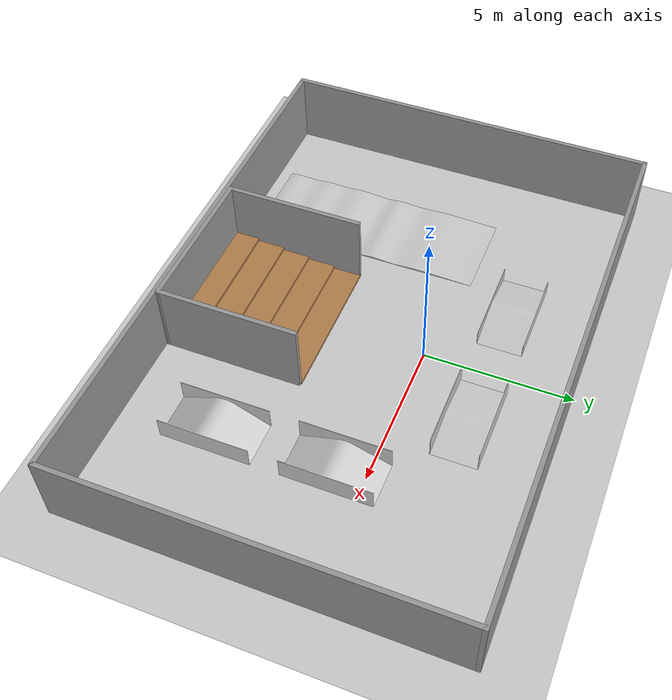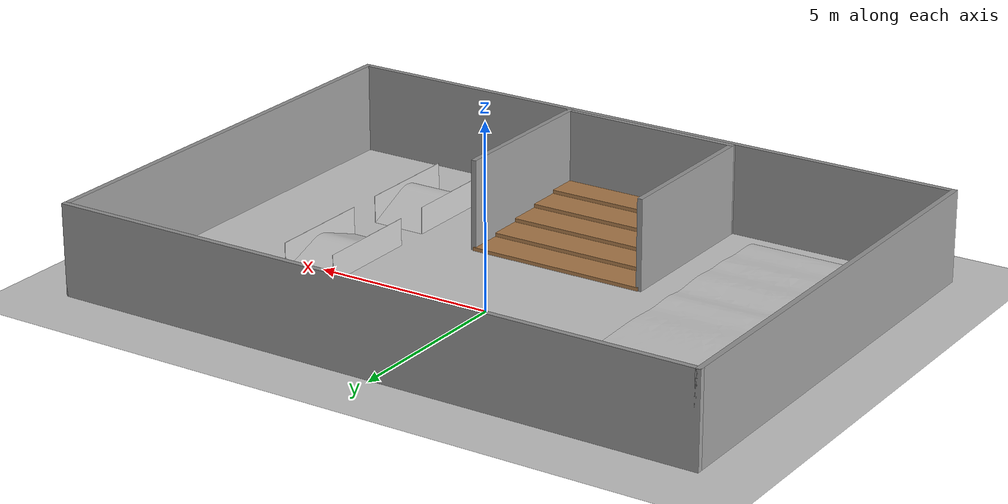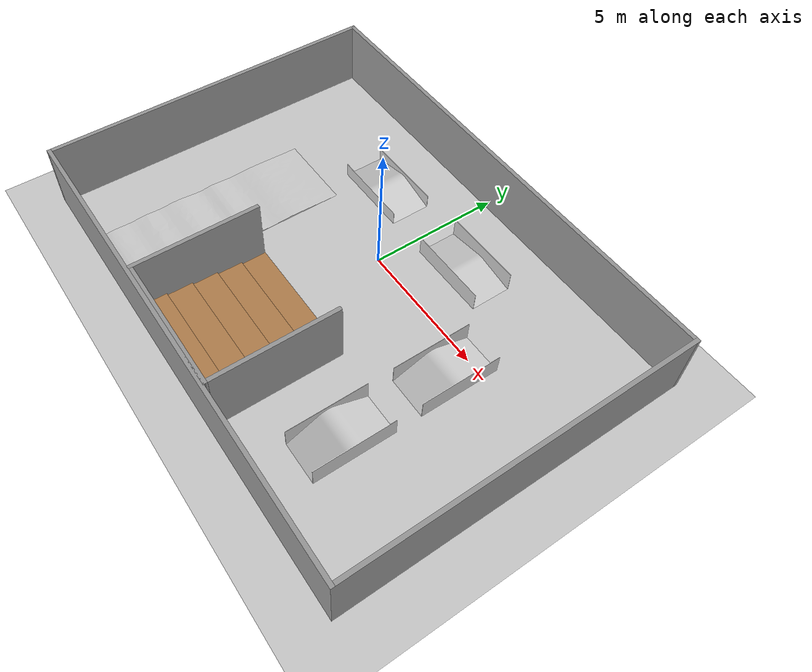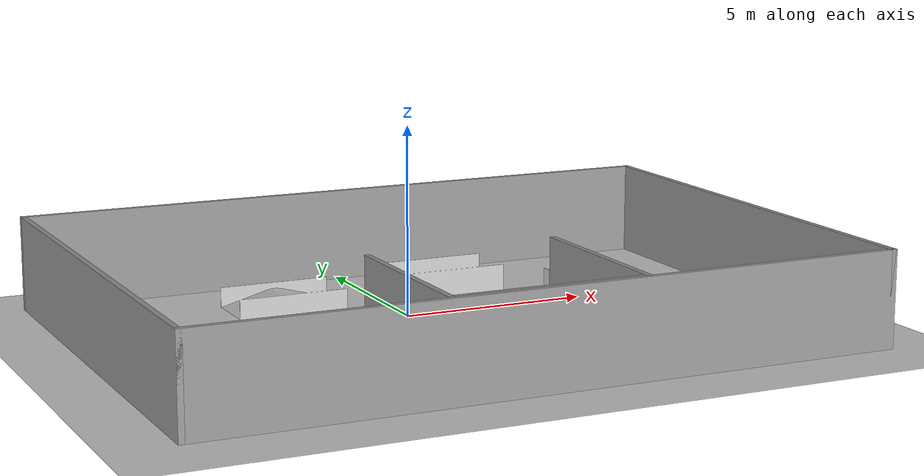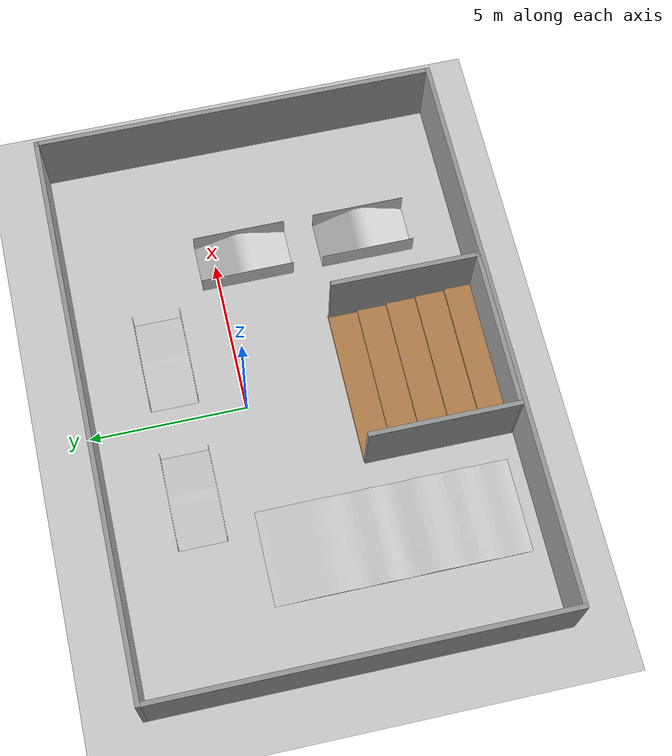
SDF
<?xml version="1.0" ?>
<sdf version="1.6">
  <world name="default">

    <!-- A simple ground plane -->
    <include>
      <uri>model://ground_plane</uri>
    </include>

    <!-- A light source -->
    <include>
      <uri>model://sun</uri>
    </include>
    <!-- Stairs -->
    <include>
      <uri>model://stairs</uri>
      <pose>0 -5.5 0 0 0 0</pose>

    </include>
    <include>
      <uri>model://wall</uri>
      <pose>0.24 -1.58 0 0 0 0</pose>

    </include>

    <model name="ramp_10">
      <pose>2 2.95 0 0 0 -1.57</pose>
      <link name="link">
        <!-- Visual element for rendering -->
        <visual name="visual">
          <geometry>
            <mesh>
              <uri>model://ramp/ramp_10.stl</uri>
              <scale>0.0015 0.0015 0.0015</scale>
            </mesh>
          </geometry>
          <material>
            <ambient>0.1 0.1 0.1 1.0</ambient>
            <diffuse>0.8 0.8 0.8 1.0</diffuse>
            <specular>0.0 0.0 0.0 1.0</specular>
            <emissive>0.0 0.0 0.0 1.0</emissive>
          </material>
        </visual>
        <!-- Collision element for physics interactions -->
        <collision name="collision">
          <geometry>
            <mesh>
              <uri>model://ramp/ramp_10.stl</uri>
              <scale>0.0015 0.0015 0.0015</scale>
            </mesh>
          </geometry>
          <surface>
            <friction>
              <ode>
                <mu>100.0</mu>
                <mu2>100.0</mu2>
              </ode>
            </friction>
          </surface>
        </collision>
      </link>
      <static>true</static>
    </model>
    <model name="ramp_15">
      <pose>-2.6 2.95 0 0 0 -1.57</pose>
      <link name="link">
        <!-- Visual element for rendering -->
        <visual name="visual">
          <geometry>
            <mesh>
              <uri>model://ramp/ramp_15.stl</uri>
              <scale>0.0015 0.0015 0.0015</scale>
            </mesh>
          </geometry>
          <material>
            <ambient>0.1 0.1 0.1 1.0</ambient>
            <diffuse>0.8 0.8 0.8 1.0</diffuse>
            <specular>0.0 0.0 0.0 1.0</specular>
            <emissive>0.0 0.0 0.0 1.0</emissive>
          </material>
        </visual>
        <!-- Collision element for physics interactions -->
        <collision name="collision">
          <geometry>
            <mesh>
              <uri>model://ramp/ramp_15.stl</uri>
              <scale>0.0015 0.0015 0.0015</scale>
            </mesh>
          </geometry>
          <surface>
            <friction>
              <ode>
                <mu>100.0</mu>
                <mu2>100.0</mu2>
              </ode>
            </friction>
          </surface>
        </collision>
      </link>
      <static>true</static>
    </model>
    <model name="ramp_20">
      <pose>4.29 -0.95 0 0 0 0</pose>
      <link name="link">
        <!-- Visual element for rendering -->
        <visual name="visual">
          <geometry>
            <mesh>
              <uri>model://ramp/ramp_20.stl</uri>
              <scale>0.0015 0.0015 0.0015</scale>
            </mesh>
          </geometry>
          <material>
            <ambient>0.1 0.1 0.1 1.0</ambient>
            <diffuse>0.8 0.8 0.8 1.0</diffuse>
            <specular>0.0 0.0 0.0 1.0</specular>
            <emissive>0.0 0.0 0.0 1.0</emissive>
          </material>
        </visual>
        <!-- Collision element for physics interactions -->
        <collision name="collision">
          <geometry>
            <mesh>
              <uri>model://ramp/ramp_20.stl</uri>
              <scale>0.0015 0.0015 0.0015</scale>
            </mesh>
          </geometry>
          <surface>
            <friction>
              <ode>
                <mu>100.0</mu>
                <mu2>100.0</mu2>
              </ode>
            </friction>
          </surface>
        </collision>
      </link>
      <static>true</static>
    </model>
    <model name="ramp_25">
      <pose>4.3 -4.91 0 0 0 0</pose>
      <link name="link">
        <!-- Visual element for rendering -->
        <visual name="visual">
          <geometry>
            <mesh>
              <uri>model://ramp/ramp_25.stl</uri>
              <scale>0.0015 0.0015 0.0015</scale>
            </mesh>
          </geometry>
          <material>
            <ambient>0.1 0.1 0.1 1.0</ambient>
            <diffuse>0.8 0.8 0.8 1.0</diffuse>
            <specular>0.0 0.0 0.0 1.0</specular>
            <emissive>0.0 0.0 0.0 1.0</emissive>
          </material>
        </visual>
        <!-- Collision element for physics interactions -->
        <collision name="collision">
          <geometry>
            <mesh>
              <uri>model://ramp/ramp_25.stl</uri>
              <scale>0.0015 0.0015 0.0015</scale>
            </mesh>
          </geometry>
          <surface>
            <friction>
              <ode>
                <mu>100.0</mu>
                <mu2>100.0</mu2>
              </ode>
            </friction>
          </surface>
        </collision>
      </link>
      <static>true</static>
    </model>

    <!-- Define the STL model -->
    <model name="surface">
      <pose>-6.4 -4 -0.6 0 0 0</pose> <!-- Position the model slightly above the ground plane -->
      <link name="link">
        <!-- Visual element for rendering -->
        <visual name="visual">
          <geometry>
            <mesh>
              <uri>model://surface/surface.stl</uri>
              <scale>0.05 0.05 0.05</scale>
            </mesh>
          </geometry>
          <material>
            <ambient>0.1 0.1 0.1 1.0</ambient>
            <diffuse>0.8 0.8 0.8 1.0</diffuse>
            <specular>0.0 0.0 0.0 1.0</specular>
            <emissive>0.0 0.0 0.0 1.0</emissive>
          </material>
        </visual>
        <!-- Collision element for physics interactions -->
        <collision name="collision">
          <geometry>
            <mesh>
              <uri>model://surface/surface.stl</uri>
              <scale>0.05 0.05 0.05</scale>
            </mesh>
          </geometry>
          <surface>
            <friction>
              <ode>
                <mu>100.0</mu> <!-- Maximum friction value -->
                <mu2>100.0</mu2>
              </ode>
            </friction>
          </surface>
        </collision>
      </link>
      <static>true</static>
    </model>

  </world>
</sdf>

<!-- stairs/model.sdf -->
<sdf version='1.7'>
  <model name='stairs'>
    <pose>0.288095 -2.46384 0 0 -0 0</pose>
    <link name='Stairs_4'>
      <visual name='Stairs_4_Visual_0'>
        <pose>-0.001731 1.85245 0.05 0 -0 0</pose>
        <geometry>
          <box>
            <size>5 0.945675 0.1</size>
          </box>
        </geometry>
        <material>
          <script>
            <uri>file://media/materials/scripts/gazebo.material</uri>
            <name>Gazebo/Wood</name>
          </script>
          <ambient>1 1 1 1</ambient>
        </material>
        <meta>
          <layer>0</layer>
        </meta>
      </visual>
      <collision name='Stairs_4_Collision_0'>
        <geometry>
          <box>
            <size>5 0.945675 0.1</size>
          </box>
        </geometry>
        <pose>-0.001731 1.85245 0.05 0 -0 0</pose>
      </collision>
      <visual name='Stairs_4_Visual_1'>
        <pose>-0.001731 0.906775 0.15 0 -0 0</pose>
        <geometry>
          <box>
            <size>5 0.945675 0.1</size>
          </box>
        </geometry>
        <material>
          <script>
            <uri>file://media/materials/scripts/gazebo.material</uri>
            <name>Gazebo/Wood</name>
          </script>
          <ambient>1 1 1 1</ambient>
        </material>
        <meta>
          <layer>0</layer>
        </meta>
      </visual>
      <collision name='Stairs_4_Collision_1'>
        <geometry>
          <box>
            <size>5 0.945675 0.1</size>
          </box>
        </geometry>
        <pose>-0.001731 0.906775 0.15 0 -0 0</pose>
      </collision>
      <visual name='Stairs_4_Visual_2'>
        <pose>-0.001731 -0.0389 0.25 0 -0 0</pose>
        <geometry>
          <box>
            <size>5 0.945675 0.1</size>
          </box>
        </geometry>
        <material>
          <script>
            <uri>file://media/materials/scripts/gazebo.material</uri>
            <name>Gazebo/Wood</name>
          </script>
          <ambient>1 1 1 1</ambient>
        </material>
        <meta>
          <layer>0</layer>
        </meta>
      </visual>
      <collision name='Stairs_4_Collision_2'>
        <geometry>
          <box>
            <size>5 0.945675 0.1</size>
          </box>
        </geometry>
        <pose>-0.001731 -0.0389 0.25 0 -0 0</pose>
      </collision>
      <visual name='Stairs_4_Visual_3'>
        <pose>-0.001731 -0.984575 0.35 0 -0 0</pose>
        <geometry>
          <box>
            <size>5 0.945675 0.1</size>
          </box>
        </geometry>
        <material>
          <script>
            <uri>file://media/materials/scripts/gazebo.material</uri>
            <name>Gazebo/Wood</name>
          </script>
          <ambient>1 1 1 1</ambient>
        </material>
        <meta>
          <layer>0</layer>
        </meta>
      </visual>
      <collision name='Stairs_4_Collision_3'>
        <geometry>
          <box>
            <size>5 0.945675 0.1</size>
          </box>
        </geometry>
        <pose>-0.001731 -0.984575 0.35 0 -0 0</pose>
      </collision>
      <visual name='Stairs_4_Visual_4'>
        <pose>-0.001731 -1.93025 0.45 0 -0 0</pose>
        <geometry>
          <box>
            <size>5 0.945675 0.1</size>
          </box>
        </geometry>
        <material>
          <script>
            <uri>file://media/materials/scripts/gazebo.material</uri>
            <name>Gazebo/Wood</name>
          </script>
          <ambient>1 1 1 1</ambient>
        </material>
        <meta>
          <layer>0</layer>
        </meta>
      </visual>
      <collision name='Stairs_4_Collision_4'>
        <geometry>
          <box>
            <size>5 0.945675 0.1</size>
          </box>
        </geometry>
        <pose>-0.001731 -1.93025 0.45 0 -0 0</pose>
      </collision>
    </link>
    <link name='Wall_3'>
      <collision name='Wall_3_Collision'>
        <geometry>
          <box>
            <size>4.75 0.15 2.5</size>
          </box>
        </geometry>
        <pose>0 0 1.25 0 -0 0</pose>
      </collision>
      <visual name='Wall_3_Visual'>
        <pose>0 0 1.25 0 -0 0</pose>
        <geometry>
          <box>
            <size>4.75 0.15 2.5</size>
          </box>
        </geometry>
        <material>
          <script>
            <uri>file://media/materials/scripts/gazebo.material</uri>
            <name>Gazebo/Grey</name>
          </script>
          <ambient>1 1 1 1</ambient>
        </material>
        <meta>
          <layer>0</layer>
        </meta>
      </visual>
      <pose>-2.50462 -0.068585 0 0 -0 1.5708</pose>
    </link>
    <link name='Wall_7'>
      <collision name='Wall_7_Collision'>
        <geometry>
          <box>
            <size>4.75 0.15 2.5</size>
          </box>
        </geometry>
        <pose>0 0 1.25 0 -0 0</pose>
      </collision>
      <visual name='Wall_7_Visual'>
        <pose>0 0 1.25 0 -0 0</pose>
        <geometry>
          <box>
            <size>4.75 0.15 2.5</size>
          </box>
        </geometry>
        <material>
          <script>
            <uri>file://media/materials/scripts/gazebo.material</uri>
            <name>Gazebo/Grey</name>
          </script>
          <ambient>1 1 1 1</ambient>
        </material>
        <meta>
          <layer>0</layer>
        </meta>
      </visual>
      <pose>2.50462 -0.088542 0 0 -0 1.5708</pose>
    </link>
    <link name='Wall_9'>
      <collision name='Wall_9_Collision'>
        <geometry>
          <box>
            <size>5.15928 0.15 2.5</size>
          </box>
        </geometry>
        <pose>0 0 1.25 0 -0 0</pose>
      </collision>
      <visual name='Wall_9_Visual'>
        <pose>0 0 1.25 0 -0 0</pose>
        <geometry>
          <box>
            <size>5.15928 0.15 2.5</size>
          </box>
        </geometry>
        <material>
          <script>
            <uri>file://media/materials/scripts/gazebo.material</uri>
            <name>Gazebo/Grey</name>
          </script>
          <ambient>1 1 1 1</ambient>
        </material>
        <meta>
          <layer>0</layer>
        </meta>
      </visual>
      <pose>-0 -2.37856 0 0 -0 -0.003984</pose>
    </link>
    <static>1</static>
  </model>
</sdf>

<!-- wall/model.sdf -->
<sdf version='1.7'>
  <model name='wall'>
    <pose>0.536992 -1.58009 0 0 -0 0</pose>
    <link name='Wall_18'>
      <collision name='Wall_18_Collision'>
        <geometry>
          <box>
            <size>18.25 0.15 2.5</size>
          </box>
        </geometry>
        <pose>0 0 1.25 0 -0 0</pose>
      </collision>
      <visual name='Wall_18_Visual'>
        <pose>0 0 1.25 0 -0 0</pose>
        <geometry>
          <box>
            <size>18.25 0.15 2.5</size>
          </box>
        </geometry>
        <material>
          <script>
            <uri>file://media/materials/scripts/gazebo.material</uri>
            <name>Gazebo/Grey</name>
          </script>
          <ambient>1 1 1 1</ambient>
        </material>
        <meta>
          <layer>0</layer>
        </meta>
      </visual>
      <pose>-0 6.425 0 0 -0 0</pose>
    </link>
    <link name='Wall_20'>
      <collision name='Wall_20_Collision'>
        <geometry>
          <box>
            <size>13 0.15 2.5</size>
          </box>
        </geometry>
        <pose>0 0 1.25 0 -0 0</pose>
      </collision>
      <visual name='Wall_20_Visual'>
        <pose>0 0 1.25 0 -0 0</pose>
        <geometry>
          <box>
            <size>13 0.15 2.5</size>
          </box>
        </geometry>
        <material>
          <script>
            <uri>file://media/materials/scripts/gazebo.material</uri>
            <name>Gazebo/Grey</name>
          </script>
          <ambient>1 1 1 1</ambient>
        </material>
        <meta>
          <layer>0</layer>
        </meta>
      </visual>
      <pose>-9.05 -0 0 0 -0 -1.5708</pose>
    </link>
    <link name='Wall_21'>
      <collision name='Wall_21_Collision'>
        <geometry>
          <box>
            <size>18.25 0.15 2.5</size>
          </box>
        </geometry>
        <pose>0 0 1.25 0 -0 0</pose>
      </collision>
      <visual name='Wall_21_Visual'>
        <pose>0 0 1.25 0 -0 0</pose>
        <geometry>
          <box>
            <size>18.25 0.15 2.5</size>
          </box>
        </geometry>
        <material>
          <script>
            <uri>file://media/materials/scripts/gazebo.material</uri>
            <name>Gazebo/Grey</name>
          </script>
          <ambient>1 1 1 1</ambient>
        </material>
        <meta>
          <layer>0</layer>
        </meta>
      </visual>
      <pose>-0 -6.425 0 0 -0 0</pose>
    </link>
    <link name='Wall_22'>
      <collision name='Wall_22_Collision'>
        <geometry>
          <box>
            <size>13 0.15 2.5</size>
          </box>
        </geometry>
        <pose>0 0 1.25 0 -0 0</pose>
      </collision>
      <visual name='Wall_22_Visual'>
        <pose>0 0 1.25 0 -0 0</pose>
        <geometry>
          <box>
            <size>13 0.15 2.5</size>
          </box>
        </geometry>
        <material>
          <script>
            <uri>file://media/materials/scripts/gazebo.material</uri>
            <name>Gazebo/Grey</name>
          </script>
          <ambient>1 1 1 1</ambient>
        </material>
        <meta>
          <layer>0</layer>
        </meta>
      </visual>
      <pose>9.05 -0 0 0 -0 1.5708</pose>
    </link>
    <static>1</static>
  </model>
</sdf>
